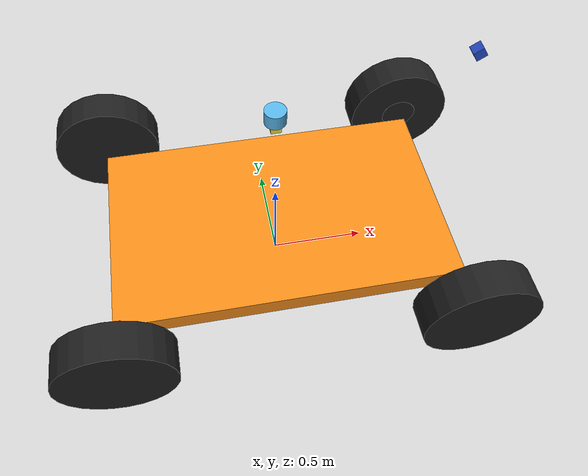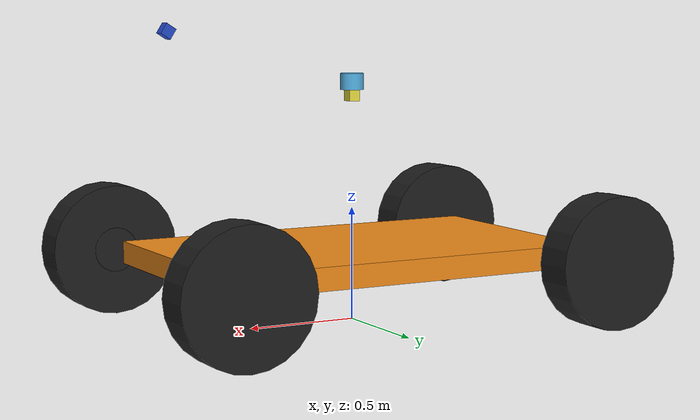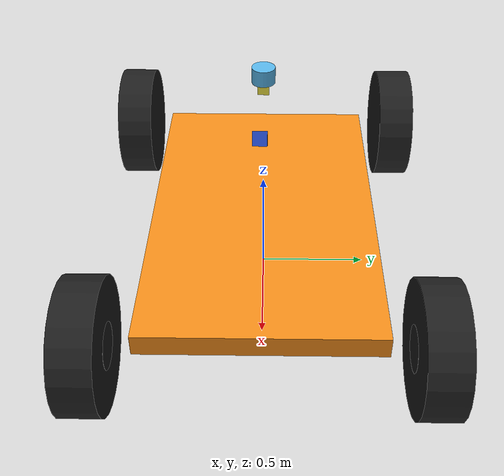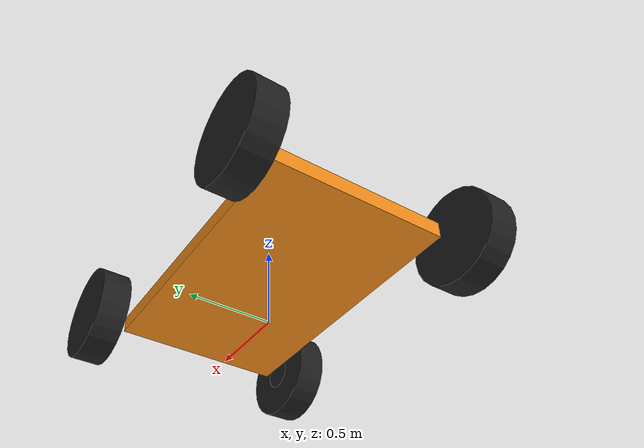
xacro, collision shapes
<?xml version="1.0"?>
<robot name="gem" xmlns:xacro="http://www.ros.org/wiki/xacro">

<!-- Vehicle Dimensions -->
<xacro:property name="wheel_base_length" value="1.753"/>
<xacro:property name="wheel_base_width" value="1.245"/>
<xacro:property name="wheel_diameter" value="0.584"/>
<xacro:property name="wheel_thickness" value="0.178"/>

<!-- Macros -->
<xacro:macro name="wheel" params="name radius width material caster_offset mass">
  <link name="${name}">
		<collision>
		  <origin xyz="0 0 0" rpy="0 1.5708 1.5708" />
		  <geometry>
		   <cylinder length="${width}" radius="${radius}"/>
		  </geometry>
		</collision>
		<visual>
		  <origin xyz="0 0 0" rpy="0 1.5708 1.5708" />
		  <geometry>
			<cylinder length="${width}" radius="${radius}"/>
		  </geometry>
		  <material name="black"/>
		</visual>
		<inertial>
		  <origin xyz="0 0 0" rpy="0 1.5708 1.5708" />
		  <mass value="0.2"/>
      <cylinder_inirtia m="${mass}" r="${radius}" h="${width}" />
	  </inertial>
	</link>
  <gazebo reference="${name}">
    <mu1 value="2.0"/>
    <mu2 value="2.0"/>
    <kp  value="10000000.0" />
    <kd  value="1.0" />
    <fdir1 value="0 1 0"/>
    <material>${material}</material>
  </gazebo>
</xacro:macro>

<xacro:macro name="wheel_steer" params="lr lr_reflect">
  <xacro:wheel name="${lr}" radius="${wheel_diameter/2}" width="${wheel_thickness}" material="Gazebo/Blue" caster_offset="0" mass="6"/>
  <xacro:wheel name="${lr}_assembly" radius="0.1" width="0.001" material="Gazebo/White" caster_offset="-.5" mass="0.5" />

  <joint name="${lr}_hinge" type="revolute">
    <parent link="chassis"/>
    <child link="${lr}_assembly"/>
    <origin xyz="${wheel_base_length/2} ${lr_reflect*(wheel_base_width/2)} ${wheel_diameter/2}" rpy="0 0 0" />
    <axis xyz="0 0 1" rpy="0 0 0" />
    <limit effort="100" velocity="1" lower="-1" upper="1"/>
    <dynamics damping="0.0" friction="0.0"/>
  </joint>
  <joint name="${lr}_rotate" type="continuous">
    <parent link="${lr}_assembly"/>
    <child link="${lr}"/>
    <origin xyz="0.0 ${lr_reflect*(wheel_thickness/2)} 0.0" rpy="0 0 0" />
    <axis xyz="0 1 0" rpy="0 0 0" />
    <limit effort="100" velocity="50"/>
    <dynamics damping="0.0" friction="0.0"/>
  </joint>
  <transmission name="trans_${lr}_hing">
    <type>transmission_interface/SimpleTransmission</type>
    <joint name="${lr}_hinge">
      <hardwareInterface>hardware_interface/EffortJointInterface</hardwareInterface>
    </joint>
    <actuator name="motor_${lr}_front">
      <mechanicalReduction>1</mechanicalReduction>
    </actuator>
  </transmission>
  <transmission name="trans_${lr}_rotate">
    <type>transmission_interface/SimpleTransmission</type>
    <joint name="${lr}_rotate">
      <hardwareInterface>hardware_interface/EffortJointInterface</hardwareInterface>
    </joint>
    <actuator name="motor_${lr}_rotate">
      <mechanicalReduction>1</mechanicalReduction>
    </actuator>
  </transmission>
</xacro:macro>

<xacro:macro name="rear_wheel" params="lr lr_reflect">
  <xacro:wheel name="${lr}" radius="${wheel_diameter/2}" width="${wheel_thickness}" material="Gazebo/Blue" caster_offset="0" mass="6" />

  <joint name="${lr}_rotate" type="continuous">
    <parent link="chassis"/>
    <child link="${lr}"/>
    <origin xyz="${-wheel_base_length/2} ${lr_reflect*((wheel_base_width/2)+(wheel_thickness/2))} ${wheel_diameter/2}" rpy="0 0 0" />
    <axis xyz="0 1 0" rpy="0 0 0" />
    <limit effort="0" velocity="0"/>
    <dynamics damping="0.0" friction="0.0"/>
  </joint>

</xacro:macro>

  <xacro:macro name="box_inertia" params="x y z m">
		<inertia  ixx="${m*(y*y+z*z)/12}" ixy = "0" ixz = "0"
		          iyy="${m*(x*x+z*z)/12}" iyz = "0"
		          izz="${m*(x*x+z*z)/12}" />
	</xacro:macro>
  <xacro:macro name="cylinder_inirtia" params="m r h">
    <inertia  ixx="${(m*((3*r*r)+(h*h)))/12}" ixy = "0" ixz = "0"
              iyy="${(m*((3*r*r)+(h*h)))/12}" iyz = "0"
              izz="${(m*r*r)/2}" />
  </xacro:macro>

<!-- Macros End -->

    <!-- Base link -->
  <link name="base_link">
    <visual>
      <geometry>
        <box size="0.01 0.01 0.01"/>
      </geometry>
    </visual>
  </link>

	<!-- Chassis START-->
  <joint name="base_joint" type="fixed">
    <parent link="base_link"/>
    <child link="chassis"/>
  </joint>

  <link name="chassis">
    <collision>
      <origin xyz="0 0 ${wheel_diameter/2}" rpy="0 0 0"/>
      <geometry>
            <box size="${wheel_base_length} ${wheel_base_width-wheel_thickness} 0.1"/>
      </geometry>
    </collision>
    <visual>
      <origin xyz="0 0 0.3" rpy="0 0 0"/>
      <geometry>
         <box size="${wheel_base_length} ${wheel_base_width-wheel_thickness} 0.1"/>
      </geometry>
      <material name="orange"/>
    </visual>
    <inertial>
      <mass value="1"/>
      <origin xyz="0 0 0.3" rpy="0 0 0"/>
      <box_inertia x="${wheel_base_length}" y="${wheel_base_width-wheel_thickness}" z=".1" m="1" />
    </inertial>
  </link>

  <gazebo reference="chassis">
    <!--Stiffness -->
    <kp>1000000.0</kp>
    <!--Dampening-->
    <kd>0.1</kd>
    <dampingFactor>0</dampingFactor>
    <material>Gazebo/White</material>
    <selfCollide>false</selfCollide>
    <turnGravityOff>false</turnGravityOff>
    <mu1 value="0.1"/>
    <mu2 value="0.1"/>
    <fdir1 value="0 0 0"/>
  </gazebo>
	<!-- Chassis END -->

  <xacro:wheel_steer lr="right_wheel" lr_reflect="-1" />
  <xacro:wheel_steer lr="left_wheel" lr_reflect="1" />
  <xacro:rear_wheel lr="right_wheel_rear" lr_reflect="-1" />
  <xacro:rear_wheel lr="left_wheel_rear" lr_reflect="1" />

  	<!-- Camera -->
	<!-- You can adjust the camera angle with the p in rpy, measured in radians. -->
	<!-- You can also increate the height of the camera by adding a number, in meters, -->
	<!-- to the z in xyz. For example, to simulate a camera mounted on a 1/2 meter post, -->
	<!-- we can replace the z value with ${wheelRadius+chassisHeight+0.5} -->
  <joint name="camera_joint" type="fixed">
    <origin xyz="${wheel_base_length/2} 0 ${(wheel_diameter/2)+1}" rpy="0 1.0 0"/>
    <parent link="chassis"/>
    <child link="camera"/>
  </joint>

  <link name="camera">
    <collision>
      <origin xyz="0 0 0" rpy="0 0 0"/>
      <geometry>
	<box size=".05 .05 .05"/>
      </geometry>
    </collision>

    <visual>
      <origin xyz="0 0 0" rpy="0 0 0"/>
      <geometry>
	<box size=".05 .05 .05"/>
      </geometry>
      <material name="blue"/>
    </visual>

    <inertial>
      <mass value="0.05" />
      <origin xyz="0 0 0" rpy="0 0 0"/>
      <box_inertia x=".05" y=".05" z=".05" m="0.05" />
    </inertial>
  </link>

 <gazebo reference="camera">
  <material>Gazebo/Blue</material>
  <sensor type="camera" name="camera1">
      <update_rate>30.0</update_rate>
      <camera name="head">
        <horizontal_fov>1.3962634</horizontal_fov>
        <image>
          <width>1600</width>
          <height>1600</height>
          <format>R8G8B8</format>
        </image>
        <clip>
          <near>0.02</near>
          <far>300</far>
        </clip>
      </camera>
      <plugin name="camera_controller" filename="libgazebo_ros_camera.so">
        <alwaysOn>true</alwaysOn>
        <updateRate>0.0</updateRate>
        <cameraName>camera1</cameraName>
        <imageTopicName>image_raw</imageTopicName>
        <cameraInfoTopicName>camera_info</cameraInfoTopicName>
        <frameName>camera_link</frameName>
        <hackBaseline>0.07</hackBaseline>
        <distortionK1>0.0</distortionK1>
        <distortionK2>0.0</distortionK2>
        <distortionK3>0.0</distortionK3>
        <distortionT1>0.0</distortionT1>
        <distortionT2>0.0</distortionT2>
      </plugin>
    </sensor>
 </gazebo>

  <xacro:include filename="$(find velodyne_description)/urdf/VLP-16.urdf.xacro"/>
  <VLP-16 parent="mount" name="velodyne" topic="/velodyne_points">
    <origin xyz="0 0 0.025" rpy="0 0 0" />
  </VLP-16>

  <joint name="mount" type="fixed" >
   <parent link="chassis" />
    <child link="mount" />
    <origin xyz="0 0 1" rpy="0 0 0" />
  </joint>
  <link name="mount" >
    <visual>
      <geometry>
        <box size="0.05 0.05 0.05" />
      </geometry>
    </visual>
    <collision>
      <geometry>
        <box size="0.05 0.05 0.05" />
      </geometry>
    </collision>
    <inertial>
      <origin xyz="0 0 0"/>
      <mass value="1"/>
      <inertia ixx="1.0" ixy="0.0" ixz="0.0"
               iyy="1.0" iyz="0.0"
               izz="1.0" />
    </inertial>
  </link>

    <gazebo>
		<plugin name="gazebo_ros_control" filename="libgazebo_ros_control.so">
		  <robotNamespace>/ack</robotNamespace>
			<legacyModeNS>true</legacyModeNS>
		</plugin>
    <plugin name="p3d_base_controller" filename="libgazebo_ros_p3d.so">
      <alwaysOn>true</alwaysOn>
      <updateRate>50.0</updateRate>
      <bodyName>base_link</bodyName>
      <topicName>odom</topicName>
      <gaussianNoise>0.01</gaussianNoise>
      <frameName>world</frameName>
      <xyzOffsets>0 0 0</xyzOffsets>
      <rpyOffsets>0 0 0</rpyOffsets>
    </plugin>
	</gazebo>

</robot>

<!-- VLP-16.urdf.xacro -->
<robot xmlns:xacro="http://www.ros.org/wiki/xacro" name="VLP-16">
  <xacro:property name="M_PI" value="3.1415926535897931" />
  <xacro:macro name="VLP-16" params="*origin is_sim:=true parent:=base_link name:=velodyne tf_prefix:='' topic:=/velodyne_points organize_cloud:=false hz:=10 lasers:=16 samples:=1875 collision_range:=0.3 min_range:=0.0 max_range:=100.0 noise:=0.008 min_angle:=-${M_PI} max_angle:=${M_PI} gpu:=false">

    <joint name="${name}_base_mount_joint" type="fixed">
      <xacro:insert_block name="origin" />
      <parent link="${parent}"/>
      <child link="${name}_base_link"/>
    </joint>

    <link name="${name}_base_link">
      <inertial>
        <mass value="0.83"/>
        <origin xyz="0 0 0.03585"/>
        <inertia ixx="${(0.83 * (3.0*0.0516*0.0516 + 0.0717*0.0717)) / 12.0}" ixy="0" ixz="0"
          iyy="${(0.83 * (3.0*0.0516*0.0516 + 0.0717*0.0717)) / 12.0}" iyz="0"
          izz="${0.5 * 0.83 * (0.0516*0.0516)}"/>
      </inertial>
      <visual>
        <geometry>
          <mesh filename="package://velodyne_description/meshes/VLP16_base_1.dae" />
        </geometry>
      </visual>
      <visual>
        <geometry>
          <mesh filename="package://velodyne_description/meshes/VLP16_base_2.dae" />
        </geometry>
      </visual>
      <collision>
        <origin rpy="0 0 0" xyz="0 0 0.03585"/>
        <geometry>
          <cylinder radius="0.0516" length="0.0717"/>
        </geometry>
      </collision>
    </link>

    <joint name="${name}_base_scan_joint" type="fixed" >
      <origin xyz="0 0 0.0377" rpy="0 0 0" />
      <parent link="${name}_base_link" />
      <child link="${name}"/>
    </joint>

    <link name="${name}">
      <inertial>
        <mass value="0.01"/>
        <origin xyz="0 0 0"/>
        <inertia ixx="1e-7" ixy="0" ixz="0" iyy="1e-7" iyz="0" izz="1e-7"/>
      </inertial>
      <visual>
        <origin xyz="0 0 -0.0377" />
        <geometry>
          <mesh filename="package://velodyne_description/meshes/VLP16_scan.dae" />
        </geometry>
      </visual>
      <collision>
        <geometry>
          <sphere radius="0"/>
        </geometry>
      </collision>
    </link>

    <!-- Gazebo requires the velodyne_gazebo_plugins package -->
    <xacro:if value="${is_sim}">
        <gazebo reference="${name}">
            <xacro:if value="${gpu}">
                <sensor type="gpu_ray" name="${name}-VLP16">
                <pose>0 0 0 0 0 0</pose>
                <visualize>false</visualize>
                <update_rate>${hz}</update_rate>
                <ray>
                    <scan>
                    <horizontal>
                        <samples>${samples}</samples>
                        <resolution>1</resolution>
                        <min_angle>${min_angle}</min_angle>
                        <max_angle>${max_angle}</max_angle>
                    </horizontal>
                    <vertical>
                        <samples>${lasers}</samples>
                        <resolution>1</resolution>
                        <min_angle>-${15.0*M_PI/180.0}</min_angle>
                        <max_angle> ${15.0*M_PI/180.0}</max_angle>
                    </vertical>
                    </scan>
                    <range>
                    <min>${collision_range}</min>
                    <max>${max_range+1}</max>
                    <resolution>0.001</resolution>
                    </range>
                    <noise>
                    <type>gaussian</type>
                    <mean>0.0</mean>
                    <stddev>0.0</stddev>
                    </noise>
                </ray>
                <plugin name="gazebo_ros_laser_controller" filename="libgazebo_ros_velodyne_laser.so">
                    <ros>
                    <namespace>/${name}</namespace>
                    <remapping>~/out:=${topic}</remapping>
                    </ros>
                    <tf_prefix>${tf_prefix}</tf_prefix>
                    <frame_name>${name}</frame_name>
                    <organize_cloud>${organize_cloud}</organize_cloud>
                    <min_range>${min_range}</min_range>
                    <max_range>${max_range}</max_range>
                    <gaussian_noise>${noise}</gaussian_noise>
                </plugin>
                </sensor>
            </xacro:if>
            <xacro:unless value="${gpu}">
                <sensor type="ray" name="${name}-VLP16">
                <pose>0 0 0 0 0 0</pose>
                <visualize>false</visualize>
                <update_rate>${hz}</update_rate>
                <ray>
                    <scan>
                    <horizontal>
                        <samples>${samples}</samples>
                        <resolution>1</resolution>
                        <min_angle>${min_angle}</min_angle>
                        <max_angle>${max_angle}</max_angle>
                    </horizontal>
                    <vertical>
                        <samples>${lasers}</samples>
                        <resolution>1</resolution>
                        <min_angle>-${15.0*M_PI/180.0}</min_angle>
                        <max_angle> ${15.0*M_PI/180.0}</max_angle>
                    </vertical>
                    </scan>
                    <range>
                    <min>${collision_range}</min>
                    <max>${max_range+1}</max>
                    <resolution>0.001</resolution>
                    </range>
                    <noise>
                    <type>gaussian</type>
                    <mean>0.0</mean>
                    <stddev>0.0</stddev>
                    </noise>
                </ray>
                <plugin name="gazebo_ros_laser_controller" filename="libgazebo_ros_velodyne_laser.so">
                    <ros>
                    <namespace>/${name}</namespace>
                    <remapping>~/out:=${topic}</remapping>
                    </ros>
                    <tf_prefix>${tf_prefix}</tf_prefix>
                    <frame_name>${name}</frame_name>
                    <organize_cloud>${organize_cloud}</organize_cloud>
                    <min_range>${min_range}</min_range>
                    <max_range>${max_range}</max_range>
                    <gaussian_noise>${noise}</gaussian_noise>
                </plugin>
                </sensor>
            </xacro:unless>
        </gazebo>
    </xacro:if>

  </xacro:macro>
</robot>
